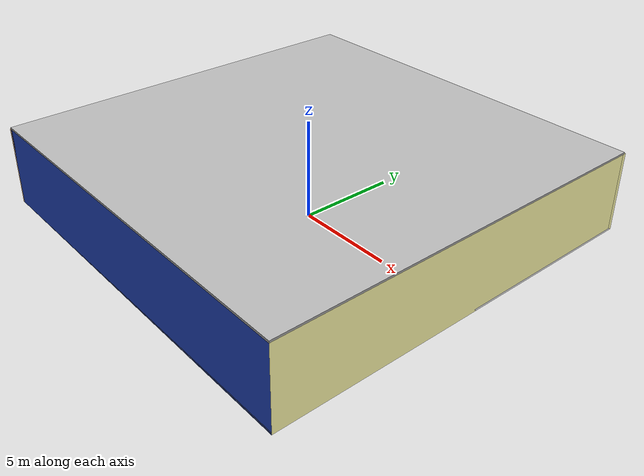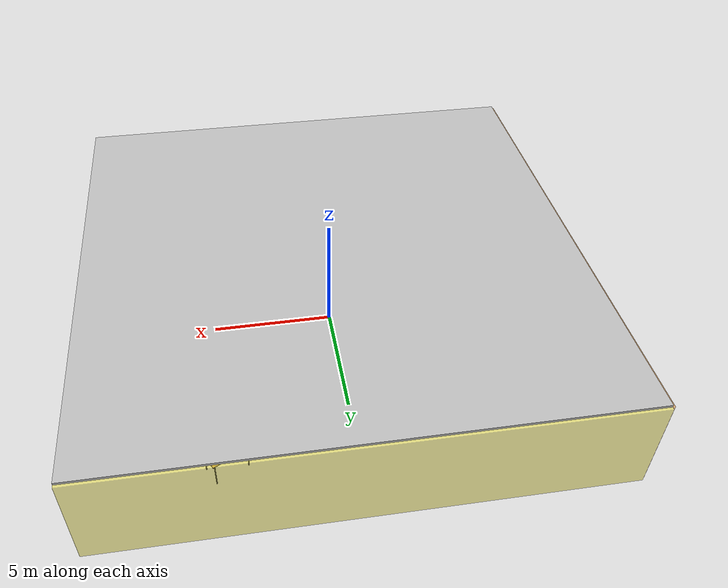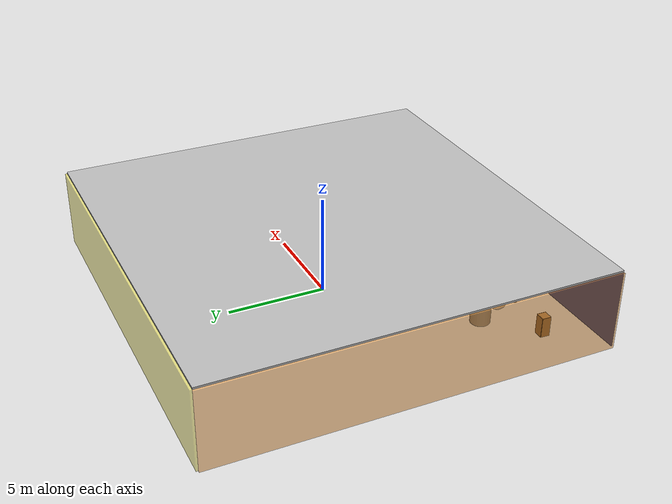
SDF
<sdf version="1.4">
 <world name="default">
  <physics type="ode">
   <max_step_size>0.001</max_step_size>
   <real_time_factor>1</real_time_factor>
   <real_time_update_rate>1000</real_time_update_rate>
   <gravity>0 0 -9.8</gravity>
  </physics>
  <scene><ambient>0.4 0.4 0.4 1</ambient><background>0.7 0.7 0.7 1</background><shadows>1</shadows></scene>
  <model name="Surrounding">
   <static>1</static>
   <link name="Ceiling">
    <collision name="Ceiling_Collision"><geometry><box><size>20 20 0.1</size></box></geometry></collision>
    <visual name="Ceiling_Visual">
     <geometry><box><size>20 20 0.1</size></box></geometry>
     <material>
      <script><uri>file://media/materials/scripts/gazebo.material</uri><name>Gazebo/JointAnchor</name></script>
     </material>
    </visual>
    <pose>0 0 4.05 0 0 0</pose>
   </link>
   <link name="Wall_South">
    <collision name="Wall_South_Collision">
     <geometry><box><size>20 0 4</size></box></geometry>
     <pose>0 0 2 0 -0 0</pose>
    </collision>
    <visual name="Wall_South_Visual">
     <pose>0 0 2 0 -0 0</pose>
     <geometry><box><size>20 0 4</size></box></geometry>
     <material>
      <script><uri>file://media/materials/scripts/gazebo.material</uri><name>Gazebo/BlueGlow</name></script>
     </material>
    </visual>
    <velocity_decay><linear>0</linear><angular>0</angular></velocity_decay>
    <pose>0 -10 0 0 -0 0</pose>
   </link>
   <link name="Wall_East">
    <collision name="Wall_21_Collision">
     <geometry><box><size>20 0 4</size></box></geometry>
     <pose>0 0 2 0 -0 0</pose>
    </collision>
    <visual name="Wall_21_Visual">
     <pose>0 0 2 0 -0 0</pose>
     <geometry><box><size>20 0 4</size></box></geometry>
     <material>
      <script>
       <uri>file://media/materials/scripts/gazebo.material</uri>
       <name>Gazebo/YellowTransparent</name>
      </script>
     </material>
    </visual>
    <velocity_decay><linear>0</linear><angular>0</angular></velocity_decay>
    <pose>10 0 0 0 -0 1.5708</pose>
   </link>
   <link name="Wall_North">
    <collision name="Wall_22_Collision">
     <geometry><box><size>20 0.2 4</size></box></geometry>
     <pose>0 0 2 0 -0 0</pose>
    </collision>
    <visual name="Wall_22_Visual">
     <pose>0 0 2 0 -0 0</pose>
     <geometry><box><size>20 0.2 4</size></box></geometry>
     <material>
      <script>
       <uri>file://media/materials/scripts/gazebo.material</uri>
       <name>Gazebo/YellowTransparent</name>
      </script>
     </material>
    </visual>
    <velocity_decay><linear>0</linear><angular>0</angular></velocity_decay>
    <pose>0 10 0 0 -0 0</pose>
   </link>
   <link name="Wall_West">
    <collision name="Wall_23_Collision">
     <geometry><box><size>20 0.2 4</size></box></geometry>
     <pose>0 0 2 0 -0 0</pose>
    </collision>
    <visual name="Wall_23_Visual">
     <pose>0 0 2 0 -0 0</pose>
     <geometry><box><size>20 0.2 4</size></box></geometry>
     <material>
      <script>
       <uri>file://media/materials/scripts/gazebo.material</uri>
       <name>Gazebo/OrangeTransparent</name>
      </script>
     </material>
    </visual>
    <velocity_decay><linear>0</linear><angular>0</angular></velocity_decay>
    <pose>-10 0 0 0 0 -1.5708</pose>
   </link>
   <link name="Ground_link">
    <collision name="collision">
     <pose>0 0 .05 0 -0 0</pose>
     <geometry><box><size>20 20 0.1</size></box></geometry>
    </collision>
    <visual name="visual">
     <pose>0 0 .05 0 -0 0</pose>
     <geometry><box><size>20 20 0.1</size></box></geometry>
     <material>
      <script><uri>file://media/materials/scripts/gazebo.material</uri><name>Gazebo/GreyTransparent</name></script>
     </material>
    </visual>
   </link>
   <static>1</static>
  </model>
  <spherical_coordinates>
   <surface_model>EARTH_WGS84</surface_model>
   <latitude_deg>0</latitude_deg>
   <longitude_deg>0</longitude_deg>
   <elevation>0</elevation>
   <heading_deg>0</heading_deg>
  </spherical_coordinates>
  <light name="lightball_0" type="diffuse">
   <diffuse>0.8 0.8 0.8 1</diffuse>
   <specular>0.2 0.2 0.2 1</specular>
   <attenuation>
    <range>100</range>
    <constant>0.7</constant>
    <linear>0.01</linear>
    <quadratic>0.001</quadratic>
   </attenuation>
   <direction>-0.5 0.1 -0.9</direction>
   <pose>5.52573736622 -5.23271631478 3.11305691025 0 0 0</pose>
  </light>
  <light name="lightball_1" type="diffuse">
   <diffuse>0.8 0.8 0.8 1</diffuse>
   <specular>0.2 0.2 0.2 1</specular>
   <attenuation>
    <range>100</range>
    <constant>0.7</constant>
    <linear>0.01</linear>
    <quadratic>0.001</quadratic>
   </attenuation>
   <direction>-0.5 0.1 -0.9</direction>
   <pose>9.8010808111 3.39290052338 2.36045649887 0 0 0</pose>
  </light>
  <light name="lightball_2" type="diffuse">
   <diffuse>0.8 0.8 0.8 1</diffuse>
   <specular>0.2 0.2 0.2 1</specular>
   <attenuation>
    <range>100</range>
    <constant>0.7</constant>
    <linear>0.01</linear>
    <quadratic>0.001</quadratic>
   </attenuation>
   <direction>-0.5 0.1 -0.9</direction>
   <pose>7.99763824088 0.466848645216 3.01311337188 0 0 0</pose>
  </light>
  <light name="lightball_3" type="diffuse">
   <diffuse>0.8 0.8 0.8 1</diffuse>
   <specular>0.2 0.2 0.2 1</specular>
   <attenuation>
    <range>100</range>
    <constant>0.7</constant>
    <linear>0.01</linear>
    <quadratic>0.001</quadratic>
   </attenuation>
   <direction>-0.5 0.1 -0.9</direction>
   <pose>-1.36383523814 -3.76052574542 1.10002453822 0 0 0</pose>
  </light>
  <light name="lightball_4" type="diffuse">
   <diffuse>0.8 0.8 0.8 1</diffuse>
   <specular>0.2 0.2 0.2 1</specular>
   <attenuation>
    <range>100</range>
    <constant>0.7</constant>
    <linear>0.01</linear>
    <quadratic>0.001</quadratic>
   </attenuation>
   <direction>-0.5 0.1 -0.9</direction>
   <pose>-4.79883952552 0.647140104476 1.85676967866 0 0 0</pose>
  </light>
  <light name="lightball_5" type="diffuse">
   <diffuse>0.8 0.8 0.8 1</diffuse>
   <specular>0.2 0.2 0.2 1</specular>
   <attenuation>
    <range>100</range>
    <constant>0.7</constant>
    <linear>0.01</linear>
    <quadratic>0.001</quadratic>
   </attenuation>
   <direction>-0.5 0.1 -0.9</direction>
   <pose>7.2706628321 -6.72269250358 3.23057718051 0 0 0</pose>
  </light>
  <light name="lightball_6" type="diffuse">
   <diffuse>0.8 0.8 0.8 1</diffuse>
   <specular>0.2 0.2 0.2 1</specular>
   <attenuation>
    <range>100</range>
    <constant>0.7</constant>
    <linear>0.01</linear>
    <quadratic>0.001</quadratic>
   </attenuation>
   <direction>-0.5 0.1 -0.9</direction>
   <pose>-3.51906618819 -8.07975928077 1.22684023168 0 0 0</pose>
  </light>
  <light name="lightball_7" type="diffuse">
   <diffuse>0.8 0.8 0.8 1</diffuse>
   <specular>0.2 0.2 0.2 1</specular>
   <attenuation>
    <range>100</range>
    <constant>0.7</constant>
    <linear>0.01</linear>
    <quadratic>0.001</quadratic>
   </attenuation>
   <direction>-0.5 0.1 -0.9</direction>
   <pose>-8.57641797835 0.682344066526 3.77896465068 0 0 0</pose>
  </light>
  <light name="lightball_8" type="diffuse">
   <diffuse>0.8 0.8 0.8 1</diffuse>
   <specular>0.2 0.2 0.2 1</specular>
   <attenuation>
    <range>100</range>
    <constant>0.7</constant>
    <linear>0.01</linear>
    <quadratic>0.001</quadratic>
   </attenuation>
   <direction>-0.5 0.1 -0.9</direction>
   <pose>-7.58062760399 7.56222515793 0.617421038903 0 0 0</pose>
  </light>
  <light name="lightball_9" type="diffuse">
   <diffuse>0.8 0.8 0.8 1</diffuse>
   <specular>0.2 0.2 0.2 1</specular>
   <attenuation>
    <range>100</range>
    <constant>0.7</constant>
    <linear>0.01</linear>
    <quadratic>0.001</quadratic>
   </attenuation>
   <direction>-0.5 0.1 -0.9</direction>
   <pose>5.14431153998 -1.13337409585 1.7524511358 0 0 0</pose>
  </light>
  <light name="lightball_10" type="diffuse">
   <diffuse>0.8 0.8 0.8 1</diffuse>
   <specular>0.2 0.2 0.2 1</specular>
   <attenuation>
    <range>100</range>
    <constant>0.7</constant>
    <linear>0.01</linear>
    <quadratic>0.001</quadratic>
   </attenuation>
   <direction>-0.5 0.1 -0.9</direction>
   <pose>8.36521399021 0.993420152569 3.31951866018 0 0 0</pose>
  </light>
  <include><uri>model://cabinet</uri><pose>-7.79371883496 -7.69030350718 0 0 0 1.53930398036</pose></include>
  <include>
   <uri>model://textured_shapes</uri>
   <pose>-4.41147641545 -7.39053673284 0 0 0 0.441335129686</pose>
  </include>
  <include>
   <uri>model://textured_shapes</uri>
   <pose>-1.46045825667 -4.38647254786 0 0 0 2.61559031703</pose>
  </include>
  <include><uri>model://cabinet</uri><pose>0.599668248152 2.10515741089 0 0 0 0.938638925623</pose></include>
  <include><uri>model://table</uri><pose>4.88463871325 7.25590766484 0 0 0 0.483330304658</pose></include>
 </world>
</sdf>

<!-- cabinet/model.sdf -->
<sdf version="1.5">
  <model name="cabinet">
    <static>true</static>
    <link name="cabinet_bottom_plate">
      <inertial>
        <pose>0 0 -1 0 0 0</pose>
        <inertia>
          <ixx>2.050000</ixx>
          <ixy>0</ixy>
          <ixz>0</ixz>
          <iyy>2.050000</iyy>
          <iyz>0</iyz>
          <izz>2.050000</izz>
        </inertia>
        <mass>25.000000</mass>
      </inertial>
      <collision name="cabinet_bottom_plate_geom">
        <pose>0 0 0.010000 0 0 0</pose>
        <geometry>
          <box>
            <size>0.450000 0.450000 0.020000</size>
          </box>
        </geometry>
      </collision>
      <visual name="cabinet_bottom_plate_geom_visual">
        <pose>0 0 0.010000 0 0 0</pose>
        <geometry>
          <box>
            <size>0.450000 0.450000 0.020000</size>
          </box>
        </geometry>
        <material>
          <script>
            <uri>model://media/materials/scripts/gazebo.material</uri>
            <name>Gazebo/Wood</name>
          </script>
        </material>
      </visual>
      <collision name="cabinet_bottom_plate_geom_cabinet_back_plate">
        <pose>0.235000 0 0.510000 0 0 0</pose>
        <geometry>
          <box>
            <size>0.020000 0.450000 1.020000</size>
          </box>
        </geometry>
      </collision>
      <visual name="cabinet_bottom_plate_geom_cabinet_back_plate_visual">
        <pose>0.235000 0 0.510000 0 0 0</pose>
        <geometry>
          <box>
            <size>0.020000 0.450000 1.020000</size>
          </box>
        </geometry>
        <material>
          <script>
            <uri>model://media/materials/scripts/gazebo.material</uri>
            <name>Gazebo/Wood</name>
          </script>
        </material>
      </visual>
      <collision name="cabinet_bottom_plate_geom_cabinet_left_plate">
        <pose>0 0.235000 0.510000 0 0 0</pose>
        <geometry>
          <box>
            <size>0.450000 0.020000 1.020000</size>
          </box>
        </geometry>
      </collision>
      <visual name="cabinet_bottom_plate_geom_cabinet_left_plate_visual">
        <pose>0 0.235000 0.510000 0 0 0</pose>
        <geometry>
          <box>
            <size>0.450000 0.020000 1.020000</size>
          </box>
        </geometry>
        <material>
          <script>
            <uri>model://media/materials/scripts/gazebo.material</uri>
            <name>Gazebo/Wood</name>
          </script>
        </material>
      </visual>
      <collision name="cabinet_bottom_plate_geom_cabinet_middle_plate">
        <pose>0 0 0.510000 0 0 0</pose>
        <geometry>
          <box>
            <size>0.450000 0.450000 0.020000</size>
          </box>
        </geometry>
      </collision>
      <visual name="cabinet_bottom_plate_geom_cabinet_middle_plate_visual">
        <pose>0 0 0.510000 0 0 0</pose>
        <geometry>
          <box>
            <size>0.450000 0.450000 0.020000</size>
          </box>
        </geometry>
        <material>
          <script>
            <uri>model://media/materials/scripts/gazebo.material</uri>
            <name>Gazebo/Wood</name>
          </script>
        </material>
      </visual>
      <collision name="cabinet_bottom_plate_geom_cabinet_right_plate">
        <pose>0 -0.235000 0.510000 0 0 0</pose>
        <geometry>
          <box>
            <size>0.450000 0.020000 1.020000</size>
          </box>
        </geometry>
      </collision>
      <visual name="cabinet_bottom_plate_geom_cabinet_right_plate_visual">
        <pose>0 -0.235000 0.510000 0 0 0</pose>
        <geometry>
          <box>
            <size>0.450000 0.020000 1.020000</size>
          </box>
        </geometry>
        <material>
          <script>
            <uri>model://media/materials/scripts/gazebo.material</uri>
            <name>Gazebo/Wood</name>
          </script>
        </material>
      </visual>
      <collision name="cabinet_bottom_plate_geom_cabinet_top_plate">
        <pose>0 0 1.010000 0 0 0</pose>
        <geometry>
          <box>
            <size>0.450000 0.450000 0.020000</size>
          </box>
        </geometry>
      </collision>
      <visual name="cabinet_bottom_plate_geom_cabinet_top_plate_visual">
        <pose>0 0 1.010000 0 0 0</pose>
        <geometry>
          <box>
            <size>0.450000 0.450000 0.020000</size>
          </box>
        </geometry>
        <material>
          <script>
            <uri>model://media/materials/scripts/gazebo.material</uri>
            <name>Gazebo/Wood</name>
          </script>
        </material>
      </visual>
    </link>
  </model>
</sdf>

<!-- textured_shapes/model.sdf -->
<sdf version="1.6">
  <model name="textured_shapes">
    <pose>0 0 0.5 0 0 0</pose>
    <link name="box">
      <pose>0 -1.5 0 0 0 0</pose>
      <collision name="collision">
        <geometry>
          <box>
            <size>1 1 1</size>
          </box>
        </geometry>
      </collision>
      <visual name="visual">
        <geometry>
          <box>
            <size>1 1 1</size>
          </box>
        </geometry>
        <material>
          <script>
            <uri>model://../model_source/models/textured_shapes/materials/scripts</uri>
            <uri>model://../model_source/models/textured_shapes/materials/textures</uri>
            <name>TexturedShape/Squares</name>
          </script>
        </material>
      </visual>
    </link>
    <link name="sphere">
      <collision name="collision">
        <geometry>
          <sphere>
            <radius>0.5</radius>
          </sphere>
        </geometry>
      </collision>
      <visual name="visual">
        <geometry>
          <sphere>
            <radius>0.5</radius>
          </sphere>
        </geometry>
        <material>
          <script>
            <uri>model://../model_source/models/textured_shapes/materials/scripts</uri>
            <uri>model://../model_source/models/textured_shapes/materials/textures</uri>
            <name>TexturedShape/Squares</name>
          </script>
        </material>
      </visual>
    </link>
    <link name="cylinder">
      <pose>0 1.5 0 0 0 0</pose>
      <collision name="collision">
        <geometry>
          <cylinder>
            <radius>0.5</radius>
            <length>1</length>
          </cylinder>
        </geometry>
      </collision>
      <visual name="visual">
        <geometry>
          <cylinder>
            <radius>0.5</radius>
            <length>1</length>
          </cylinder>
        </geometry>
        <material>
          <script>
            <uri>model://../model_source/models/textured_shapes/materials/scripts</uri>
            <uri>model://../model_source/models/textured_shapes/materials/textures</uri>
            <name>TexturedShape/Squares</name>
          </script>
        </material>
      </visual>
    </link>
  </model>
</sdf>

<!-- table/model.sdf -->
<sdf version="1.5">
  <model name="table">
    <static>true</static>
    <link name="link">
      <collision name="surface">
        <pose>0 0 1.0 0 0 0</pose>
        <geometry>
          <box>
            <size>1.5 0.8 0.03</size>
          </box>
        </geometry>
        <surface>
          <friction>
            <ode>
              <mu>0.6</mu>
              <mu2>0.6</mu2>
            </ode>
          </friction>
        </surface>
      </collision>
      <visual name="visual1">
        <pose>0 0 1.0 0 0 0</pose>
        <geometry>
          <box>
            <size>1.5 0.8 0.03</size>
          </box>
        </geometry>
        <material>
          <script>
            <uri>model://media/materials/scripts/gazebo.material</uri>
            <name>Gazebo/Wood</name>
          </script>
        </material>
      </visual>
      <collision name="front_left_leg">
        <pose>0.68 0.38 0.5 0 0 0</pose>
        <geometry>
          <cylinder>
            <radius>0.02</radius>
            <length>1.0</length>
          </cylinder>
        </geometry>
      </collision>
      <visual name="front_left_leg">
        <pose>0.68 0.38 0.5 0 0 0</pose>
        <geometry>
          <cylinder>
            <radius>0.02</radius>
            <length>1.0</length>
          </cylinder>
        </geometry>
        <material>
          <script>
            <uri>model://media/materials/scripts/gazebo.material</uri>
            <name>Gazebo/Grey</name>
          </script>
        </material>
      </visual>
      <collision name="front_right_leg">
        <pose>0.68 -0.38 0.5 0 0 0</pose>
        <geometry>
          <cylinder>
            <radius>0.02</radius>
            <length>1.0</length>
          </cylinder>
        </geometry>
      </collision>
      <visual name="front_right_leg">
        <pose>0.68 -0.38 0.5 0 0 0</pose>
        <geometry>
          <cylinder>
            <radius>0.02</radius>
            <length>1.0</length>
          </cylinder>
        </geometry>
        <material>
          <script>
            <uri>model://media/materials/scripts/gazebo.material</uri>
            <name>Gazebo/Grey</name>
          </script>
        </material>
      </visual>
      <collision name="back_right_leg">
        <pose>-0.68 -0.38 0.5 0 0 0</pose>
        <geometry>
          <cylinder>
            <radius>0.02</radius>
            <length>1.0</length>
          </cylinder>
        </geometry>
      </collision>
      <visual name="back_right_leg">
        <pose>-0.68 -0.38 0.5 0 0 0</pose>
        <geometry>
          <cylinder>
            <radius>0.02</radius>
            <length>1.0</length>
          </cylinder>
        </geometry>
        <material>
          <script>
            <uri>model://media/materials/scripts/gazebo.material</uri>
            <name>Gazebo/Grey</name>
          </script>
        </material>
      </visual>
      <collision name="back_left_leg">
        <pose>-0.68 0.38 0.5 0 0 0</pose>
        <geometry>
          <cylinder>
            <radius>0.02</radius>
            <length>1.0</length>
          </cylinder>
        </geometry>
      </collision>
      <visual name="back_left_leg">
        <pose>-0.68 0.38 0.5 0 0 0</pose>
        <geometry>
          <cylinder>
            <radius>0.02</radius>
            <length>1.0</length>
          </cylinder>
        </geometry>
        <material>
          <script>
            <uri>model://media/materials/scripts/gazebo.material</uri>
            <name>Gazebo/Grey</name>
          </script>
        </material>
      </visual>
    </link>
  </model>
</sdf>
